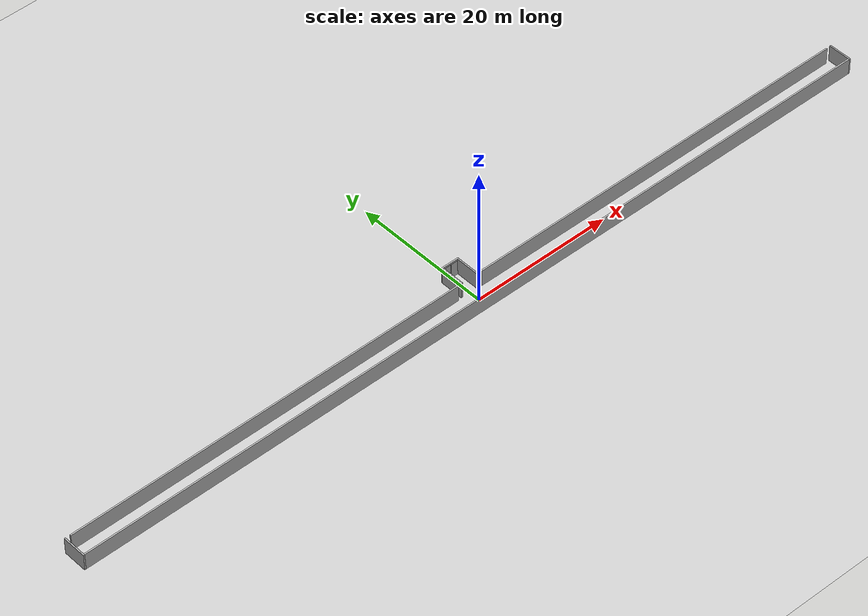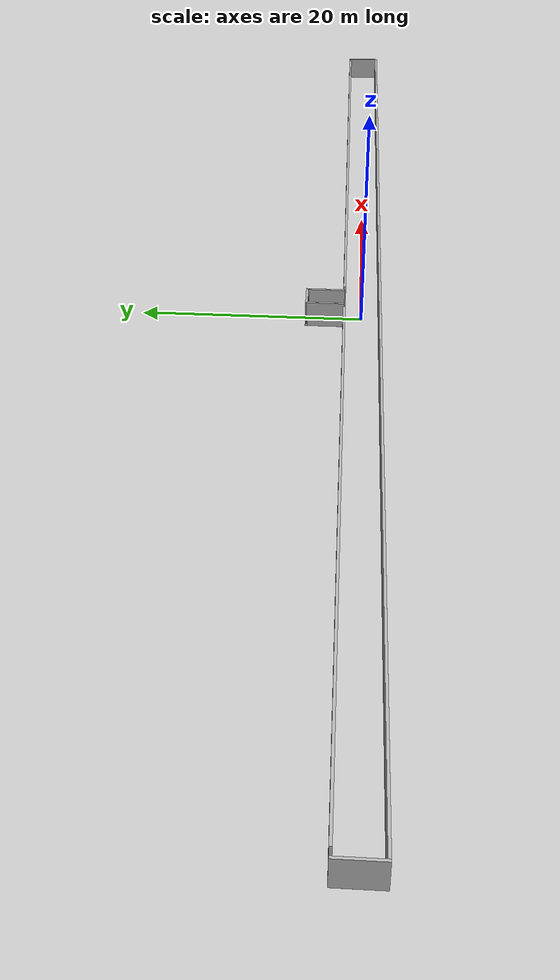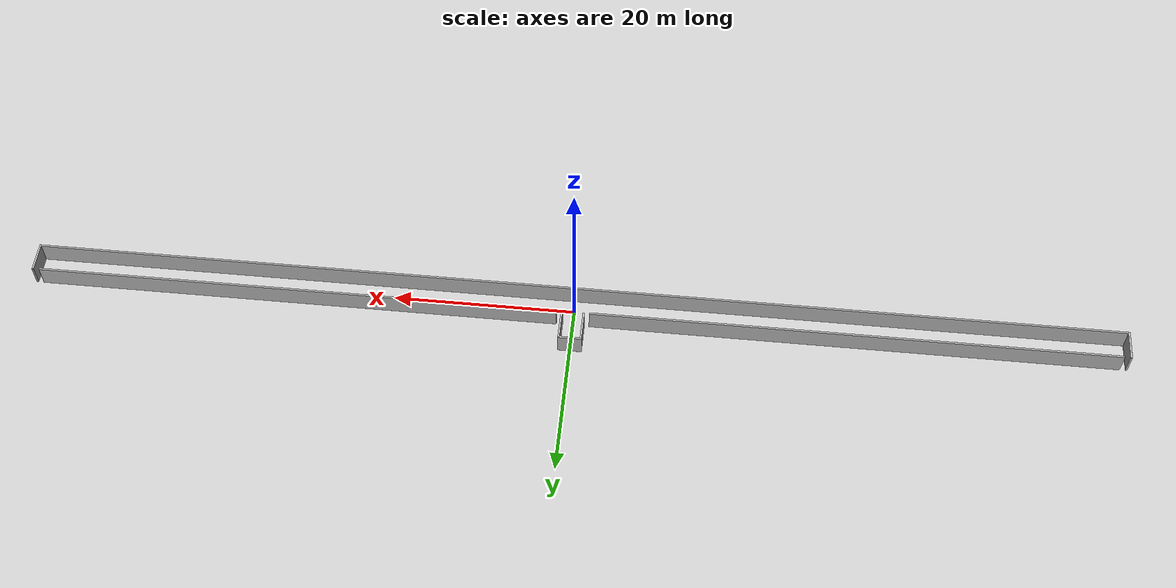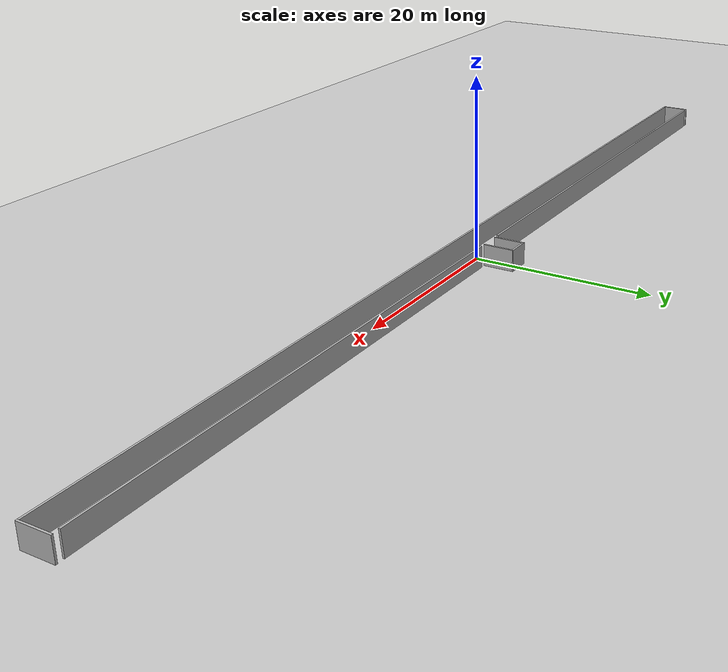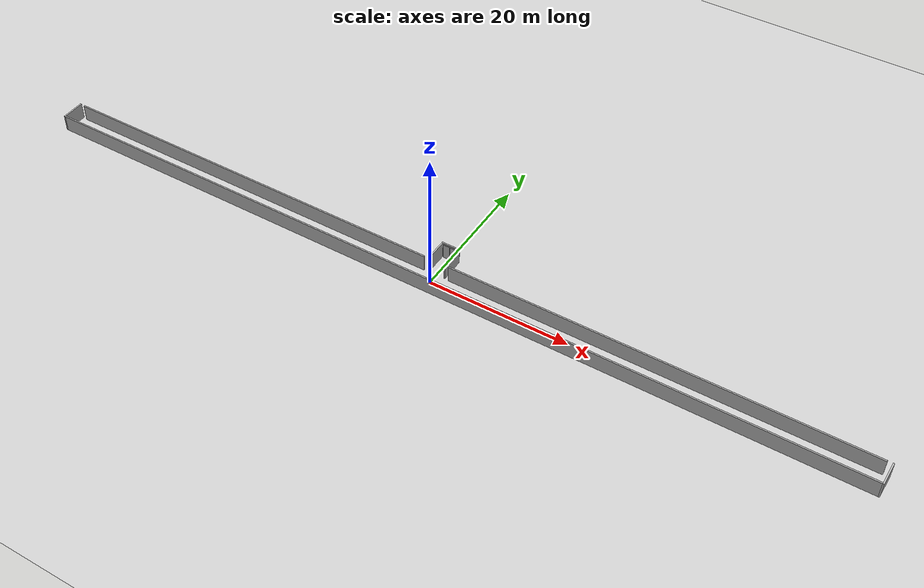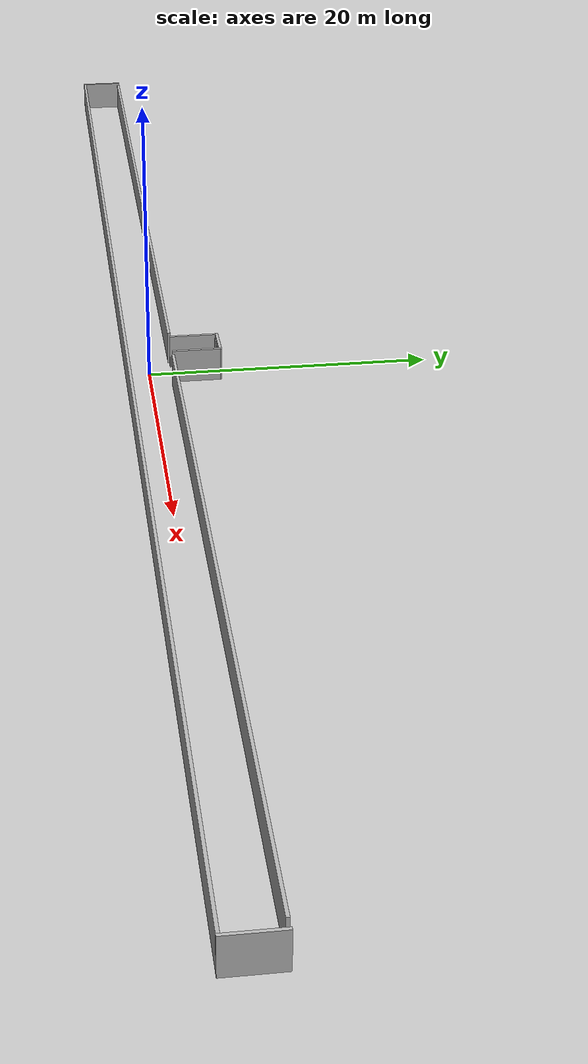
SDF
<?xml version="1.0" ?>
<sdf version="1.6">
  <world name="corridor_elevator">
    <!-- 120 m x 3 m repetitive corridor with a 2.4 m wide, 3.4 m deep
         elevator alcove on the positive-y wall at x=0. -->
    <include><uri>model://sun</uri></include>
    <include><uri>model://ground_plane</uri></include>
    <physics type="ode">
      <gravity>0 0 -9.8</gravity>
      <max_step_size>0.001</max_step_size>
      <real_time_factor>1.0</real_time_factor>
      <real_time_update_rate>1000</real_time_update_rate>
    </physics>
    <scene>
      <ambient>0.65 0.65 0.65 1</ambient>
      <background>0.70 0.78 0.86 1</background>
      <shadows>false</shadows>
    </scene>

    <!-- The left wall is split around the 2.4 m elevator entrance. -->
    <model name="left_wall_before_elevator">
      <static>true</static><pose>-30.6 1.6 1.2 0 0 0</pose>
      <link name="link">
        <collision name="collision"><geometry><box><size>57.6 0.2 2.4</size></box></geometry></collision>
        <visual name="visual"><geometry><box><size>57.6 0.2 2.4</size></box></geometry></visual>
      </link>
    </model>
    <model name="left_wall_after_elevator">
      <static>true</static><pose>30.6 1.6 1.2 0 0 0</pose>
      <link name="link">
        <collision name="collision"><geometry><box><size>57.6 0.2 2.4</size></box></geometry></collision>
        <visual name="visual"><geometry><box><size>57.6 0.2 2.4</size></box></geometry></visual>
      </link>
    </model>
    <model name="right_wall">
      <static>true</static><pose>0 -1.6 1.2 0 0 0</pose>
      <link name="link">
        <collision name="collision"><geometry><box><size>120.0 0.2 2.4</size></box></geometry></collision>
        <visual name="visual"><geometry><box><size>120.0 0.2 2.4</size></box></geometry></visual>
      </link>
    </model>
    <model name="front_end_wall">
      <static>true</static><pose>60.1 0 1.2 0 0 0</pose>
      <link name="link">
        <collision name="collision"><geometry><box><size>0.2 3.4 2.4</size></box></geometry></collision>
        <visual name="visual"><geometry><box><size>0.2 3.4 2.4</size></box></geometry></visual>
      </link>
    </model>
    <model name="back_end_wall">
      <static>true</static><pose>-60.1 0 1.2 0 0 0</pose>
      <link name="link">
        <collision name="collision"><geometry><box><size>0.2 3.4 2.4</size></box></geometry></collision>
        <visual name="visual"><geometry><box><size>0.2 3.4 2.4</size></box></geometry></visual>
      </link>
    </model>

    <!-- Elevator alcove: entrance spans x=[-1.2,1.2], depth y=1.6..5.0. -->
    <model name="elevator_left_return">
      <static>true</static><pose>-1.2 3.3 1.2 0 0 0</pose>
      <link name="link">
        <collision name="collision"><geometry><box><size>0.2 3.4 2.4</size></box></geometry></collision>
        <visual name="visual"><geometry><box><size>0.2 3.4 2.4</size></box></geometry></visual>
      </link>
    </model>
    <model name="elevator_right_return">
      <static>true</static><pose>1.2 3.3 1.2 0 0 0</pose>
      <link name="link">
        <collision name="collision"><geometry><box><size>0.2 3.4 2.4</size></box></geometry></collision>
        <visual name="visual"><geometry><box><size>0.2 3.4 2.4</size></box></geometry></visual>
      </link>
    </model>
    <model name="elevator_back_wall">
      <static>true</static><pose>0 5.0 1.2 0 0 0</pose>
      <link name="link">
        <collision name="collision"><geometry><box><size>2.6 0.2 2.4</size></box></geometry></collision>
        <visual name="visual"><geometry><box><size>2.6 0.2 2.4</size></box></geometry></visual>
      </link>
    </model>
    <model name="elevator_door_left">
      <static>true</static><pose>-0.55 4.87 1.1 0 0 0</pose>
      <link name="link">
        <collision name="collision"><geometry><box><size>1.0 0.06 2.2</size></box></geometry></collision>
        <visual name="visual"><geometry><box><size>1.0 0.06 2.2</size></box></geometry></visual>
      </link>
    </model>
    <model name="elevator_door_right">
      <static>true</static><pose>0.55 4.87 1.1 0 0 0</pose>
      <link name="link">
        <collision name="collision"><geometry><box><size>1.0 0.06 2.2</size></box></geometry></collision>
        <visual name="visual"><geometry><box><size>1.0 0.06 2.2</size></box></geometry></visual>
      </link>
    </model>
  </world>
</sdf>
